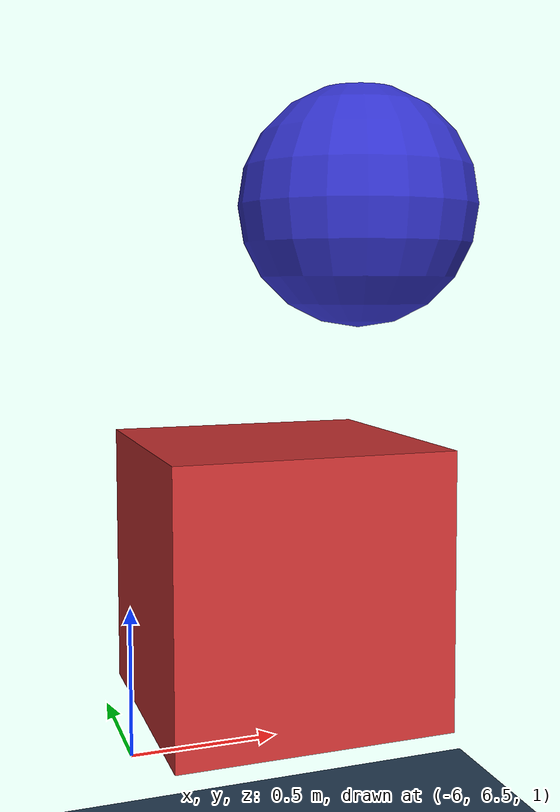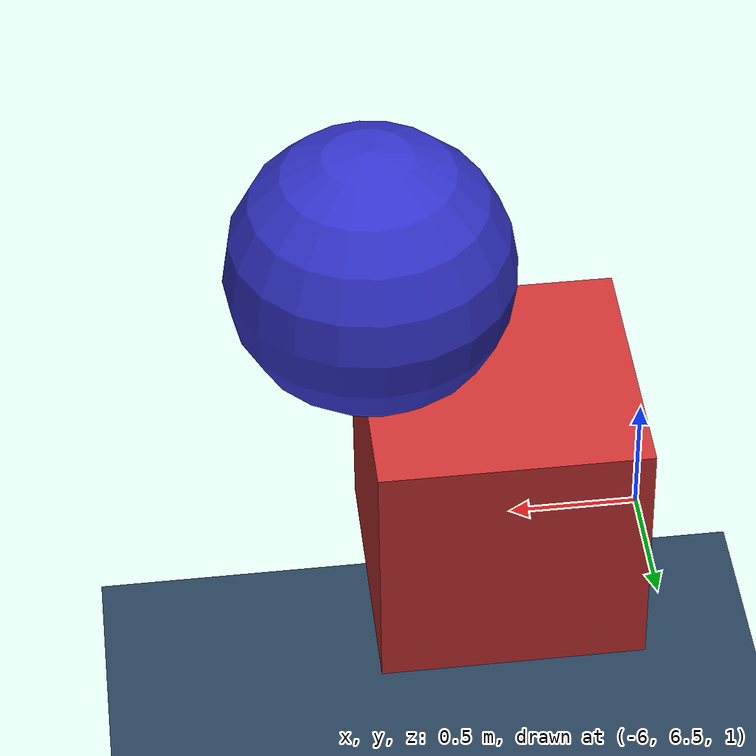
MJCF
<mujoco model="RoboSimUE_World">
  <compiler angle="radian"/>
  <option gravity="0 0 -9.81"/>
  <asset>
    <texture type="skybox" builtin="gradient" rgb1="0.3 0.5 0.7" rgb2="0 0 0" width="512" height="512"/>
    <texture name="grid" type="2d" builtin="checker" rgb1="0.2 0.3 0.4" rgb2="0.1 0.2 0.3" width="512" height="512"/>
    <material name="grid_mat" texture="grid" texrepeat="1 1" texuniform="true" reflectance="0.2"/>
  </asset>
  <worldbody>
    <light diffuse=".5 .5 .5" pos="0 0 10" dir="0 0 -1"/>
    <!-- BP_ZenohTestCube_C_UAID_047C163BA5E739C002_1862930279 -->
    <body name="BP_ZenohTestCube_C_UAID_047C163BA5E739C002_1862930279" pos="-5.4 6.8 1.5" quat="1 0 0 0">
      <freejoint name="BP_ZenohTestCube_C_UAID_047C163BA5E739C002_1862930279_joint"/>
      <geom type="box" size="0.5 0.5 0.5" rgba="0.8 0.2 0.2 1" mass="1.0"/>
    </body>
    <!-- StaticMeshActor_UAID_047C163BA5E7DEC102_2088701375 -->
    <body name="StaticMeshActor_UAID_047C163BA5E7DEC102_2088701375" pos="-4.9 7.2 2.9" quat="1 0 0 0">
      <freejoint name="StaticMeshActor_UAID_047C163BA5E7DEC102_2088701375_joint"/>
      <geom type="sphere" size="0.5" rgba="0.2 0.2 0.8 1" mass="1.0"/>
    </body>
    <!-- Floor -->
    <geom name="Floor_UAID_F4A475FF15A3736A02_1961940706" type="plane" pos="0 0 0" quat="1 0 0 0" size="50 50 0.1" material="grid_mat"/>
  </worldbody>
</mujoco>
